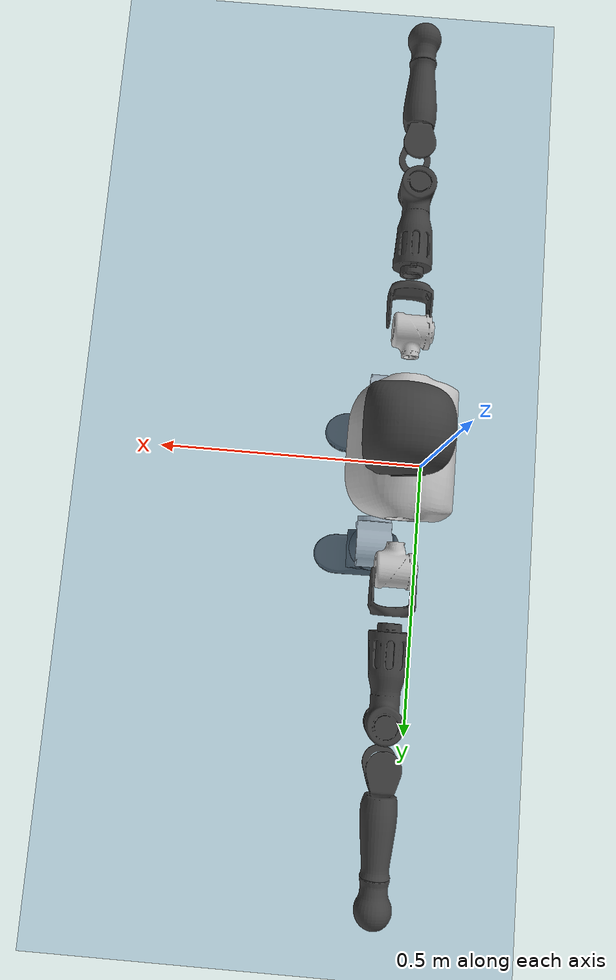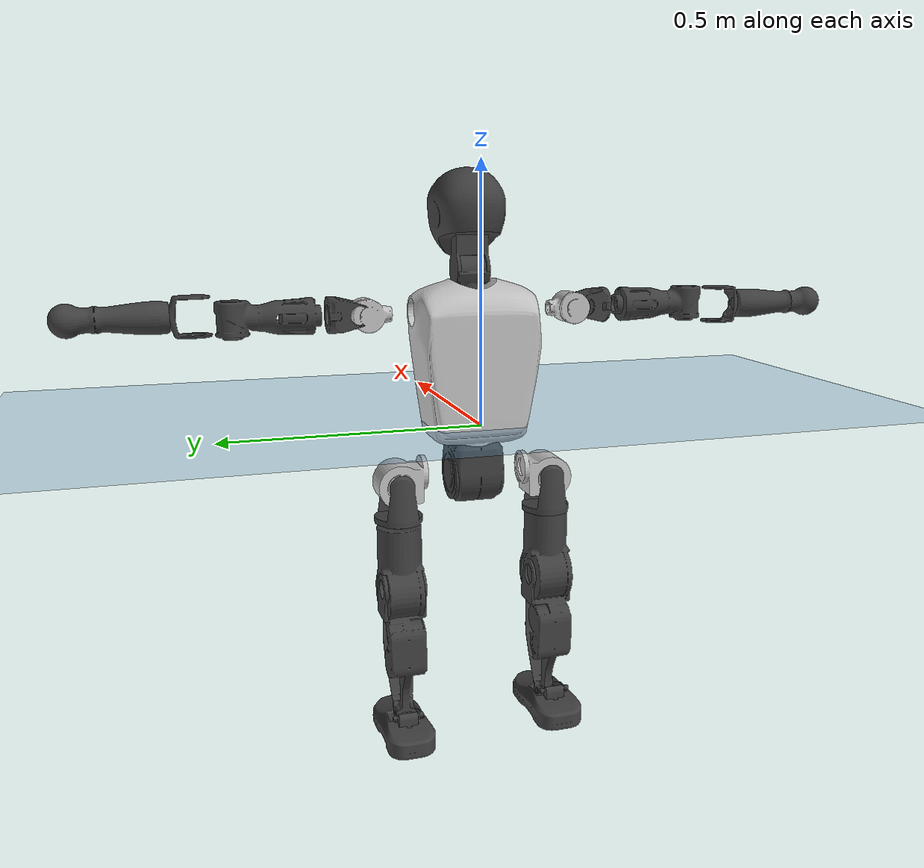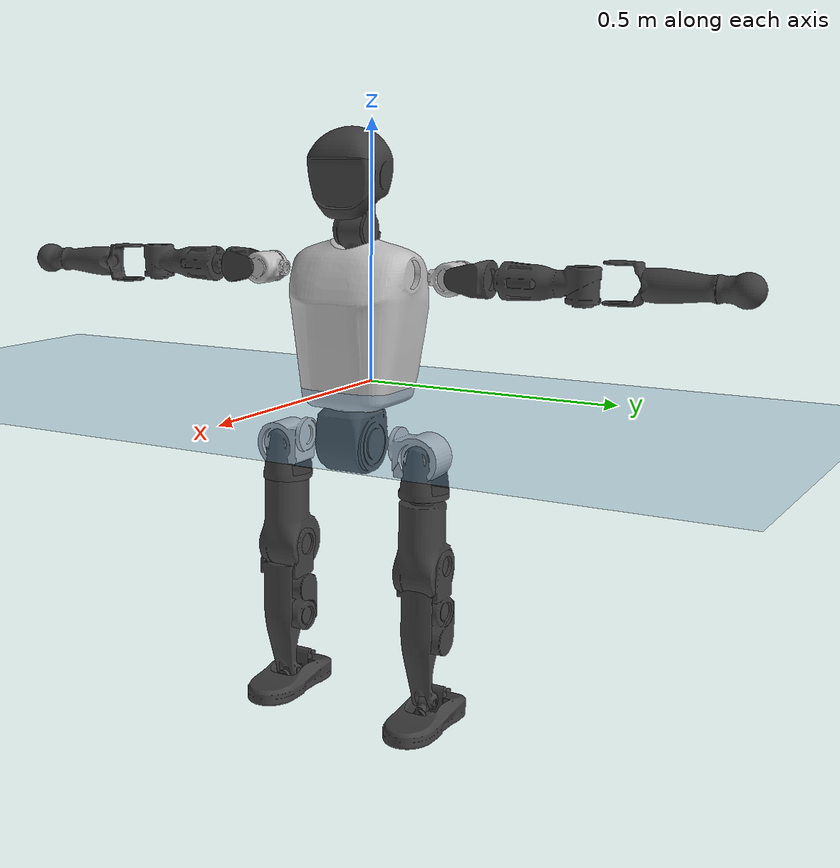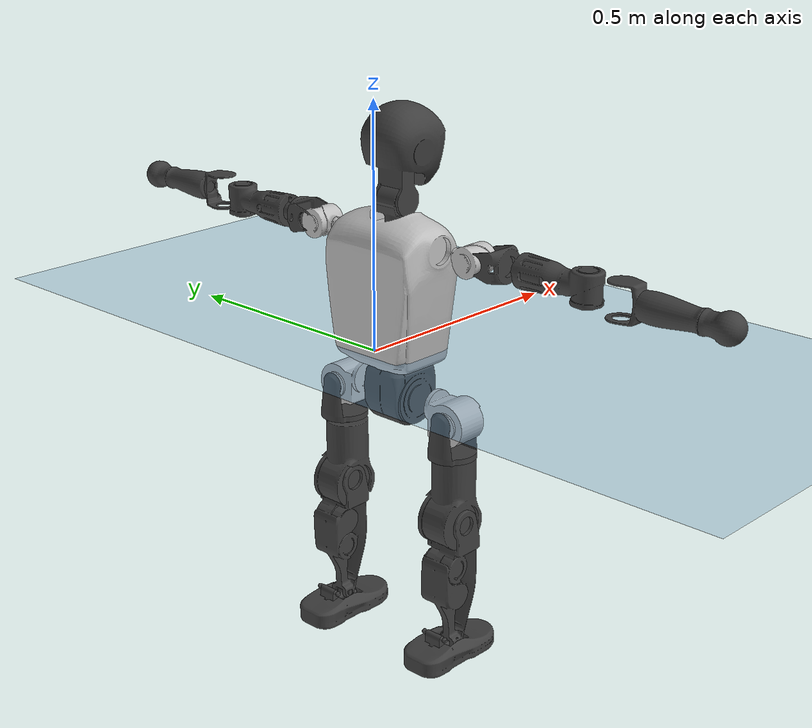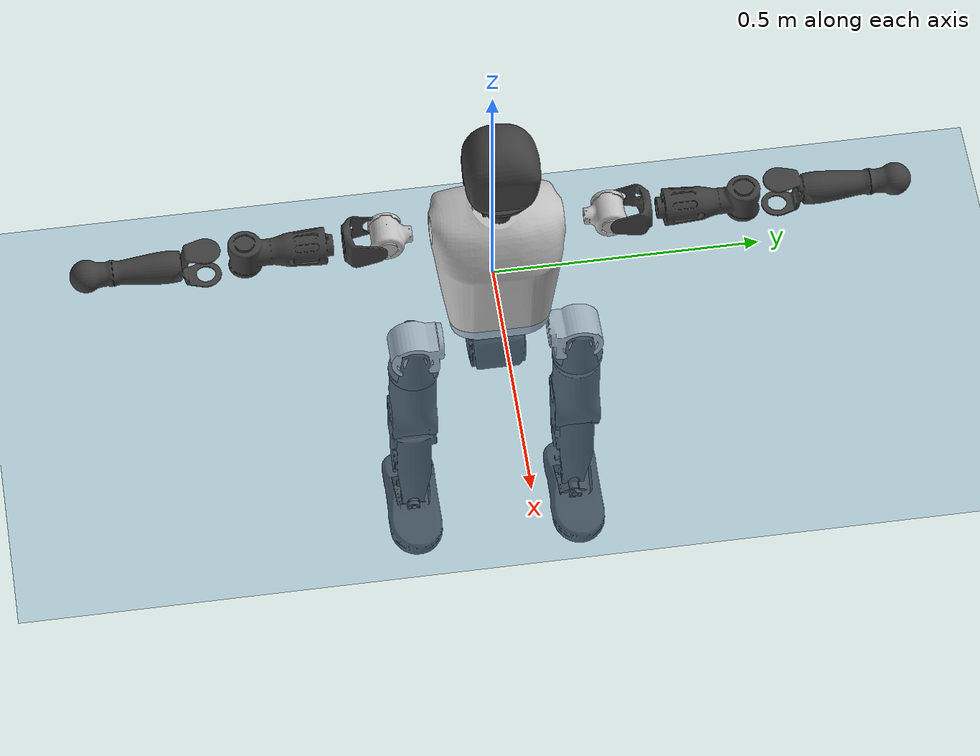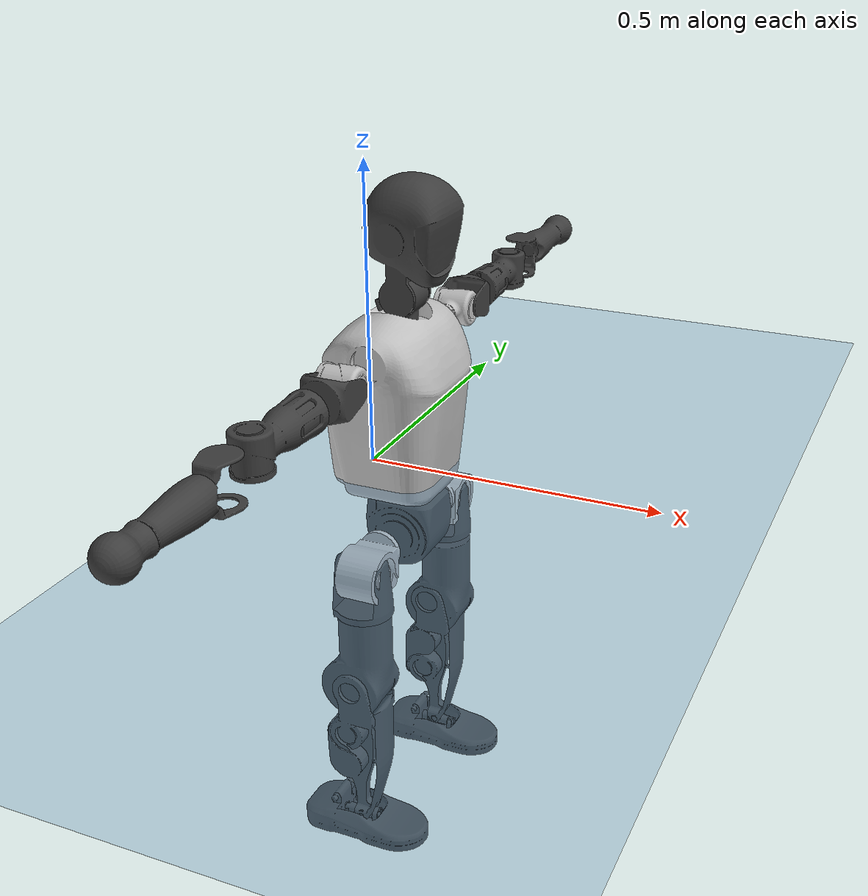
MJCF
<mujoco model="T1">
  <compiler angle="radian" assetdir="assets" balanceinertia="true" inertiafromgeom="false"/>

  <option timestep="0.005" density="1.2" viscosity="2e-05"/>

  <size nkey="1"/>

  <visual>
    <quality shadowsize="8192"/>
    <map shadowclip="0.5"/>
  </visual>

  <default>
    <default class="/">
      <joint armature="0.01" damping="0.01" frictionloss="0.1"/>
      <geom contype="0" conaffinity="0" group="1" solref="-1000 -80"/>
      <site size="0.01 0.005 0.005" group="5"/>
      <general forcelimited="true" biastype="affine" gainprm="25" biasprm="0 -25 -0.6"/>
      <default class="t1">
        <geom rgba="0.25 0.25 0.25 1"/>
        <default class="visual">
          <geom type="mesh" group="2"/>
        </default>
        <default class="collision">
          <geom group="3"/>
        </default>
        <default class="foot">
          <geom size="0.1115 0.05 0.015" type="box" condim="6" group="4" priority="1" solimp="0.015 1 0.015"/>
        </default>
        <default class="reward_collision_sphere">
          <geom group="5" rgba="1 0 0 1"/>
        </default>
      </default>
    </default>
  </default>

  <asset>
    <texture type="skybox" colorspace="auto" name="//unnamed_texture_0" builtin="gradient" rgb1="0.95 0.95 0.95" rgb2="0.95 0.95 0.95" width="100" height="600"/>
    <texture type="2d" colorspace="auto" name="texplane" builtin="checker" rgb1="0.345 0.575 0.748" rgb2="0.345 0.575 0.748" markrgb="1 1 1" width="512" height="512"/>
    <material name="MatPlane" class="/" texture="texplane" texuniform="true" texrepeat="2 2" specular="0.9"/>
    <mesh name="Trunk" class="/" file="Trunk.stl"/>
    <mesh name="H1" class="/" file="H1.stl"/>
    <mesh name="H2" class="/" file="H2.stl"/>
    <mesh name="AL1" class="/" file="AL1.stl"/>
    <mesh name="AL2" class="/" file="AL2.stl"/>
    <mesh name="AL3" class="/" file="AL3.stl"/>
    <mesh name="left_hand_link" class="/" file="left_hand_link.stl"/>
    <mesh name="AR1" class="/" file="AR1.stl"/>
    <mesh name="AR2" class="/" file="AR2.stl"/>
    <mesh name="AR3" class="/" file="AR3.stl"/>
    <mesh name="right_hand_link" class="/" file="right_hand_link.stl"/>
    <mesh name="Waist" class="/" file="Waist.stl"/>
    <mesh name="Hip_Pitch_Left" class="/" file="Hip_Pitch_Left.stl"/>
    <mesh name="Hip_Roll_Left" class="/" file="Hip_Roll_Left.stl"/>
    <mesh name="Hip_Yaw_Left" class="/" file="Hip_Yaw_Left.stl"/>
    <mesh name="Shank_Left" class="/" file="Shank_Left.stl"/>
    <mesh name="Ankle_Cross_Left" class="/" file="Ankle_Cross_Left.stl"/>
    <mesh name="left_foot_link" class="/" file="left_foot_link.stl"/>
    <mesh name="Hip_Pitch_Right" class="/" file="Hip_Pitch_Right.stl"/>
    <mesh name="Hip_Roll_Right" class="/" file="Hip_Roll_Right.stl"/>
    <mesh name="Hip_Yaw_Right" class="/" file="Hip_Yaw_Right.stl"/>
    <mesh name="Shank_Right" class="/" file="Shank_Right.stl"/>
    <mesh name="Ankle_Cross_Right" class="/" file="Ankle_Cross_Right.stl"/>
    <mesh name="right_foot_link" class="/" file="right_foot_link.stl"/>
  </asset>

  <worldbody>
    <geom name="floor" class="/" size="100 100 0.125" type="plane" group="0" material="MatPlane"/>
    <light name="toplight_shadow" class="/" pos="0 0 5" dir="0.0990148 0.0990148 -0.990148" type="directional" ambient="0.04 0.04 0.04" diffuse="0.55 0.55 0.55" specular="0.12 0.12 0.12"/>
    <light name="toplight_fill" class="/" pos="0 0 5" dir="0.0990148 0.0990148 -0.990148" type="directional" castshadow="false" ambient="0.04 0.04 0.04" diffuse="0.3 0.3 0.3" specular="0.08 0.08 0.08"/>
    <body name="trunk" childclass="t1" pos="-0.000243605 -0.000653965 -0.000991803" quat="1 2.13088e-05 0.000472789 0.000181236">
      <inertial pos="0.0545951 -0.00758773 0.0973789" quat="0.999939 0.00370505 -0.00372932 -0.00972883" mass="18.6855" diaginertia="0.108346 0.54465 0.0491421"/>
      <joint name="//unnamed_joint_0" type="free" armature="0" damping="0" frictionloss="0"/>
      <geom name="//unnamed_geom_1" class="visual" rgba="0.76 0.76 0.76 1" mesh="Trunk"/>
      <geom name="//unnamed_geom_2" class="collision" size="0.0871679 0.116224 0.174336" pos="0.0619459 0 0.11743" type="box"/>
      <geom name="//unnamed_geom_3" class="reward_collision_sphere" size="0.133658" pos="0.0619459 0 0.0978582"/>
      <geom name="//unnamed_geom_4" class="reward_collision_sphere" size="0.0174336" pos="0.0619459 0.125435 0"/>
      <geom name="//unnamed_geom_5" class="reward_collision_sphere" size="0.0174336" pos="0.0619459 -0.125435 0"/>
      <geom name="//unnamed_geom_6" class="reward_collision_sphere" size="0.0174336" pos="0.0619459 0.1579 0.176145"/>
      <geom name="//unnamed_geom_7" class="reward_collision_sphere" size="0.0174336" pos="0.0619459 -0.1579 0.176145"/>
      <site name="imu" pos="0.00678734 0.0021608 0.00819742" size="0.0116224"/>
      <camera name="track" pos="0 -2.95141 0" quat="0.707107 0.707107 0 0" mode="trackcom"/>
      <camera name="ego_camera" pos="0.125957 0 0.411004" quat="-0.5 -0.5 0.5 0.5"/>
      <body name="H1" pos="0.0632742 0.00470235 0.232347" quat="1 -0.000248124 -0.000137989 -5.20817e-05">
        <inertial pos="-0.0019254 -0.00975591 0.0540798" quat="0.767992 -0.037961 0.00206467 0.63933" mass="0.711459" diaginertia="0.000296999 0.00159081 0.000131683"/>
        <joint name="AAHead_yaw" pos="0 0 0" axis="-0.00111454 0.000661744 0.999999" range="-1.56311 1.68555" armature="0.0103062" damping="0" frictionloss="0.163366"/>
        <geom name="//unnamed_geom_8" class="visual" mesh="H1"/>
        <body name="H2" pos="0.00115831 -0.00087749 0.0648845" quat="1 -0.000659367 0.00045852 0.000341446">
          <inertial pos="0.0063708 0.00778249 0.0956833" quat="0.986247 0.118626 -0.0569229 -0.100022" mass="1.00047" diaginertia="0.00238549 0.0136241 0.00151118"/>
          <joint name="Head_pitch" pos="0 0 0" axis="-0.00823705 -0.999963 -0.00227374" range="-1.25575 0.364323" armature="0.0119042" damping="0.000944884" frictionloss="0.129164"/>
          <geom name="//unnamed_geom_9" class="visual" mesh="H2"/>
          <geom name="//unnamed_geom_10" class="collision" size="0.0929791" pos="0.0103243 0 0.107644"/>
          <geom name="//unnamed_geom_11" class="reward_collision_sphere" size="0.104602" pos="0.0206486 0 0.0978582"/>
        </body>
      </body>
      <body name="AL1" pos="0.0621701 0.160183 0.215416" quat="0.999996 -0.00114906 -7.04591e-05 0.00250233">
        <inertial pos="-0.00139302 0.0665638 -0.000383074" quat="0.496568 0.490698 -0.5302 0.481169" mass="0.812441" diaginertia="0.00161003 0.00833114 0.000267705"/>
        <joint name="Left_Shoulder_Pitch" pos="0 0 0" axis="0.000853605 0.999999 -0.00127689" range="-3.26309 1.12786" armature="0.0116282" damping="0.00104611" frictionloss="0.118413"/>
        <geom name="//unnamed_geom_12" class="visual" rgba="0.76 0.76 0.76 1" mesh="AL1"/>
        <body name="AL2" pos="0.000809098 0.0649725 0.00252821" quat="0.999999 6.11803e-05 0.00126558 -0.000401769">
          <inertial pos="-0.00193942 0.0486462 -0.00122905" quat="0.49264 0.53212 -0.455571 0.516343" mass="0.256677" diaginertia="0.000488396 0.00247298 0.000150763"/>
          <joint name="Left_Shoulder_Roll" pos="0 0 0" axis="-0.999966 -0.00502889 0.00652351" range="-1.57496 1.74496" armature="0.0130035" damping="0.00858552" frictionloss="0.104662"/>
          <geom name="//unnamed_geom_13" class="visual" mesh="AL2"/>
          <body name="AL3" pos="0.000907991 0.0814478 -0.000741332" quat="1 -0.000437162 0.000208018 -0.000306385">
            <inertial pos="0.00641891 0.127784 0.00152364" quat="0.713125 0.701004 0.00647323 0.00221068" mass="1.45076" diaginertia="0.0140073 0.0869183 0.000536371"/>
            <joint name="Left_Elbow_Pitch" pos="0 0 0" axis="0.00245354 -0.999997 0.000379195" range="-2.23228 2.14643" armature="0.0100171" damping="0" frictionloss="0.110925"/>
            <geom name="//unnamed_geom_14" class="visual" mesh="AL3"/>
            <geom name="//unnamed_geom_15" class="collision" size="0.0348672 0.0871679" pos="0 0.0737852 0" quat="0.707105 0.707108 0 0" type="cylinder"/>
            <geom name="//unnamed_geom_16" class="reward_collision_sphere" size="0.0418406"/>
            <body name="left_hand_link" pos="-0.00021654 0.211075 0.00696844" quat="0.999999 -0.000349689 -0.00107733 -6.44914e-05">
              <inertial pos="0.00133591 0.159316 0.00268767" quat="0.70303 0.711158 0.000995963 -0.00143557" mass="0.530257" diaginertia="0.0101281 0.056276 0.000188268"/>
              <joint name="Left_Elbow_Yaw" pos="0 0 0" axis="0.000812747 -0.00316119 0.999995" range="-2.32052 -0.0277695" armature="0.0116455" damping="0.0461508" frictionloss="0.0935786"/>
              <geom name="//unnamed_geom_17" class="visual" mesh="left_hand_link"/>
              <geom name="//unnamed_geom_18" class="collision" size="0.0348672 0.101696" pos="0 0.191842 0" quat="0.707105 0.707108 0 0" type="cylinder"/>
              <geom name="//unnamed_geom_19" class="reward_collision_sphere" size="0.058112"/>
              <geom name="//unnamed_geom_20" class="reward_collision_sphere" size="0.0406784" pos="0 0.162328 0"/>
              <geom name="//unnamed_geom_21" class="reward_collision_sphere" size="0.0406784" pos="0 0.317277 0"/>
            </body>
          </body>
        </body>
      </body>
      <body name="AR1" pos="0.0595377 -0.156122 0.217756" quat="0.999999 -0.00069453 0.000237274 -0.000777297">
        <inertial pos="0.00097067 -0.066046 0.00626893" quat="0.52211 0.502625 -0.480148 0.494193" mass="0.785787" diaginertia="0.00161245 0.0090358 0.000254746"/>
        <joint name="Right_Shoulder_Pitch" pos="0 0 0" axis="-0.00434769 -0.999985 -0.00330734" range="-1.22059 3.2979" armature="0.0126453" damping="0.0355613" frictionloss="0.155657"/>
        <geom name="//unnamed_geom_22" class="visual" rgba="0.76 0.76 0.76 1" mesh="AR1"/>
        <body name="AR2" pos="0.00645004 -0.0696666 0.00174599" quat="1 4.64561e-05 2.57596e-05 6.51911e-05">
          <inertial pos="0.00534546 -0.0483648 0.00263335" quat="0.492316 0.491439 -0.534327 0.480217" mass="0.260374" diaginertia="0.000465849 0.00251016 0.000155979"/>
          <joint name="Right_Shoulder_Roll" pos="0 0 0" axis="-0.999879 -0.0152666 0.00293846" range="-1.74615 1.55816" armature="0.0117597" damping="0.0451024" frictionloss="0.125634"/>
          <geom name="//unnamed_geom_23" class="visual" mesh="AR2"/>
          <body name="AR3" pos="0.000332077 -0.0884616 -0.000338124" quat="1 0.000641511 0.000459405 0.000439448">
            <inertial pos="0.00125391 -0.127866 -0.00166766" quat="0.704909 0.709227 -0.0068269 0.00740179" mass="1.55976" diaginertia="0.0148722 0.0957343 0.000540538"/>
            <joint name="Right_Elbow_Pitch" pos="0 0 0" axis="0.00284089 0.999993 -0.00261659" range="-2.3162 2.29012" armature="0.0121481" damping="0.00401273" frictionloss="0.128337"/>
            <geom name="//unnamed_geom_24" class="visual" mesh="AR3"/>
            <geom name="//unnamed_geom_25" class="collision" size="0.0348672 0.0871679" pos="0 -0.0737852 0" quat="0.707105 0.707108 0 0" type="cylinder"/>
            <geom name="//unnamed_geom_26" class="reward_collision_sphere" size="0.0418406"/>
            <body name="right_hand_link" pos="0.003755 -0.220039 -0.0073159" quat="0.999999 0.000375654 0.00102805 0.000367671">
              <inertial pos="0.00149987 -0.164408 0.00106671" quat="0.699762 0.714368 0.00318624 0.00107099" mass="0.496979" diaginertia="0.00966219 0.057401 0.000190957"/>
              <joint name="Right_Elbow_Yaw" pos="0 0 0" axis="-0.00168579 0.000407453 0.999998" range="-0.0466304 2.42277" armature="0.0104453" damping="0.0243355" frictionloss="0.0791312"/>
              <geom name="//unnamed_geom_27" class="visual" mesh="right_hand_link"/>
              <geom name="//unnamed_geom_28" class="collision" size="0.0348672 0.101696" pos="0 -0.191842 0" quat="0.707105 0.707108 0 0" type="cylinder"/>
              <geom name="//unnamed_geom_29" class="reward_collision_sphere" size="0.058112"/>
              <geom name="//unnamed_geom_30" class="reward_collision_sphere" size="0.0406784" pos="0 -0.162328 0"/>
              <geom name="//unnamed_geom_31" class="reward_collision_sphere" size="0.0406784" pos="0 -0.317277 0"/>
            </body>
          </body>
        </body>
      </body>
      <body name="Waist" pos="0.0679832 -0.00346372 -0.106098" quat="1 0.000273039 -0.000138479 0.000288932">
        <inertial pos="0.0107757 0.00179985 0.00966897" quat="0.983746 0.0115103 -0.179162 0.00338914" mass="4.30239" diaginertia="0.0070103 0.0369831 0.00437735"/>
        <joint name="Waist" pos="0 0 0" axis="-0.00332848 -0.00428296 0.999985" range="-1.54492 1.57139" armature="0.0101412" damping="0.00680456" frictionloss="0.112853"/>
        <geom name="//unnamed_geom_32" class="visual" mesh="Waist"/>
        <body name="Hip_Pitch_Left" pos="0.00315695 0.15493 0.00516949" quat="0.999999 -0.000725484 -0.000220995 0.00112635">
          <inertial pos="9.95824e-05 -0.0147942 -0.0204865" quat="0.97367 0.22734 0.0167646 0.00111069" mass="1.47724" diaginertia="0.0021034 0.00991722 0.00112272"/>
          <joint name="Left_Hip_Pitch" pos="0 0 0" axis="-0.00320274 0.999988 0.0035875" range="-1.79255 1.44715" armature="0.00763864" damping="0.00649928" frictionloss="0.120649"/>
          <geom name="//unnamed_geom_33" class="visual" rgba="0.76 0.76 0.76 1" mesh="Hip_Pitch_Left"/>
          <body name="Hip_Roll_Left" pos="-0.00598495 0.000416544 -0.0181245" quat="0.999999 0.000815359 -0.0010788 0.000454221">
            <inertial pos="0.00192828 0.000788104 -0.0529569" quat="0.727631 -0.00329104 0.0119165 0.685857" mass="0.661605" diaginertia="0.00217378 0.0105968 0.000462858"/>
            <joint name="Left_Hip_Roll" pos="0 0 0" axis="-0.999713 -0.0223784 0.00855615" range="-1.56362 0.23769" armature="0.00823645" damping="0" frictionloss="0.123946"/>
            <geom name="//unnamed_geom_34" class="visual" mesh="Hip_Roll_Left"/>
            <geom name="//unnamed_geom_35" class="reward_collision_sphere" size="0.0639232"/>
            <body name="Hip_Yaw_Left" pos="0.00273901 -0.00145268 -0.0885408" quat="0.999999 -0.00117332 6.23327e-05 -0.000417395">
              <inertial pos="-0.00256881 0.00121976 -0.0893981" quat="0.694453 -0.0305098 -0.0419315 0.717667" mass="3.29925" diaginertia="0.0290296 0.188906 0.00223845"/>
              <joint name="Left_Hip_Yaw" pos="0 0 0" axis="0.00395065 0.00812067 -0.999959" range="-0.978148 0.89533" armature="0.0119583" damping="0.00433313" frictionloss="0.11798"/>
              <geom name="//unnamed_geom_36" class="visual" mesh="Hip_Yaw_Left"/>
              <geom name="//unnamed_geom_37" class="collision" size="0.058112 0.0929791" type="cylinder"/>
              <body name="Shank_Left" pos="-0.0216418 0.000144345 -0.122325" quat="1 -0.000457263 -0.000212499 -0.000335112">
                <inertial pos="-0.00795207 -0.00439749 -0.127146" quat="0.997546 0.00125451 -0.024792 0.065462" mass="2.93243" diaginertia="0.0396355 0.230412 0.00167208"/>
                <joint name="Left_Knee_Pitch" pos="0 0 0" axis="0.00902019 0.999815 0.0169739" range="-0.0132784 2.34339" armature="0.0120298" damping="0.000304203" frictionloss="0.105404"/>
                <geom name="//unnamed_geom_38" class="visual" mesh="Shank_Left"/>
                <geom name="//unnamed_geom_39" class="collision" size="0.058112 0.0871679" pos="0 0 -0.11743" type="cylinder"/>
                <geom name="//unnamed_geom_40" class="reward_collision_sphere" size="0.0755455"/>
                <body name="Ankle_Cross_Left" pos="0.00322377 0.000358407 -0.280151" quat="0.999999 0.00119851 7.66138e-05 -0.000457388">
                  <inertial pos="-0.00360073 -0.00323902 -0.00896384" quat="0.452754 0.540319 0.546375 0.452265" mass="0.105958" diaginertia="3.1146e-05 0.000179217 9.86445e-06"/>
                  <joint name="Left_Ankle_Pitch" pos="0 0 0" axis="-0.000225245 1 0.000388054" stiffness="0.00586582" range="-0.993141 0.388229" armature="0.0120778" damping="0" frictionloss="0.123474"/>
                  <geom name="//unnamed_geom_41" class="visual" mesh="Ankle_Cross_Left"/>
                  <body name="left_foot_link" pos="-0.000509944 0.00265657 -0.0184228" quat="1 0.000243443 -6.90987e-05 -3.78469e-05">
                    <inertial pos="0.00331208 0.000874004 -0.00452411" quat="-0.00165011 0.62387 -0.00439297 0.781514" mass="1.17103" diaginertia="0.00360069 0.0174277 0.0018796"/>
                    <joint name="Left_Ankle_Roll" pos="0 0 0" axis="-0.999903 -0.000710026 -0.0139427" range="-0.42366 0.442832" armature="0.0111185" damping="0" frictionloss="0.117668"/>
                    <geom name="//unnamed_geom_42" class="visual" mesh="left_foot_link"/>
                    <geom name="left_foot" class="foot" size="0.119288 0.0421613 0.0194908" pos="0.0103243 0 -0.0146787"/>
                    <geom name="//unnamed_geom_44" class="reward_collision_sphere" size="0.0604364" pos="0.0103243 0 -0.0146787"/>
                    <geom name="//unnamed_geom_45" class="reward_collision_sphere" size="0.0348672" pos="0.0980809 -0.0339412 -0.0146787"/>
                    <geom name="//unnamed_geom_46" class="reward_collision_sphere" size="0.0348672" pos="-0.0722702 -0.0339412 -0.0146787"/>
                    <site name="left_foot" class="foot" pos="0.0103243 0 -0.0146787" size="0.0116224"/>
                  </body>
                </body>
              </body>
            </body>
          </body>
        </body>
        <body name="Hip_Pitch_Right" pos="-0.00264221 -0.15499 0.00131304" quat="0.999996 -0.00179602 -0.00152875 -0.00165223">
          <inertial pos="0.00464846 0.00996875 -0.0227746" quat="0.973029 -0.230305 0.0129965 0.00223657" mass="1.54756" diaginertia="0.00204284 0.00969499 0.00119115"/>
          <joint name="Right_Hip_Pitch" pos="0 0 0" axis="0.00423833 -0.999952 0.00881353" stiffness="0.00240577" range="-1.56717 1.94645" armature="0.0131287" damping="0.00451683" frictionloss="0.112694"/>
          <geom name="//unnamed_geom_47" class="visual" rgba="0.76 0.76 0.76 1" mesh="Hip_Pitch_Right"/>
          <body name="Hip_Roll_Right" pos="-0.00665632 0.0015875 -0.0147635" quat="1 -5.43293e-05 -0.000278026 0.000289902">
            <inertial pos="0.000768533 0.000798132 -0.0546649" quat="0.702194 0.0150428 -0.0329156 0.711065" mass="0.614421" diaginertia="0.00203954 0.0102166 0.000476933"/>
            <joint name="Right_Hip_Roll" pos="0 0 0" axis="-0.999884 0.0150454 -0.00244753" range="-0.357891 1.52695" armature="0.0111326" damping="0" frictionloss="0.110617"/>
            <geom name="//unnamed_geom_48" class="visual" mesh="Hip_Roll_Right"/>
            <geom name="//unnamed_geom_49" class="reward_collision_sphere" size="0.0639232"/>
            <body name="Hip_Yaw_Right" pos="0.000723267 -0.00154477 -0.0774298" quat="0.999999 3.23845e-05 0.00071004 0.000971809">
              <inertial pos="-0.00688368 0.000974065 -0.0810221" quat="0.712187 -0.0289165 -0.0313582 0.700692" mass="3.55751" diaginertia="0.031422 0.177125 0.00242053"/>
              <joint name="Right_Hip_Yaw" pos="0 0 0" axis="-0.0286999 0.0294937 -0.999153" range="-0.968796 1.02966" armature="0.00870766" damping="0.0437742" frictionloss="0.118377"/>
              <geom name="//unnamed_geom_50" class="visual" mesh="Hip_Yaw_Right"/>
              <geom name="//unnamed_geom_51" class="collision" size="0.058112 0.0929791" type="cylinder"/>
              <body name="Shank_Right" pos="-0.0114719 -0.00219905 -0.135601" quat="1 -0.000680216 -1.56652e-05 0.000293955">
                <inertial pos="-0.00550569 -0.000992603 -0.116164" quat="0.999273 0.00579003 -0.0292951 -0.0236979" mass="2.5131" diaginertia="0.0365301 0.224394 0.0015615"/>
                <joint name="Right_Knee_Pitch" pos="0 0 0" axis="0.0107657 -0.999792 -0.0173348" range="-2.46052 0.00363322" armature="0.00762119" damping="0.00117081" frictionloss="0.119498"/>
                <geom name="//unnamed_geom_52" class="visual" mesh="Shank_Right"/>
                <geom name="//unnamed_geom_53" class="collision" size="0.058112 0.0871679" pos="0 0 -0.11743" type="cylinder"/>
                <geom name="//unnamed_geom_54" class="reward_collision_sphere" size="0.0755455"/>
                <body name="Ankle_Cross_Right" pos="0.00151509 0.00129974 -0.271044" quat="1 0.000399922 0.000175997 0.000243329">
                  <inertial pos="-0.00419874 0.00219374 -0.00765866" quat="0.442965 0.551546 0.552778 0.440472" mass="0.114078" diaginertia="3.25428e-05 0.000171398 1.00559e-05"/>
                  <joint name="Right_Ankle_Pitch" pos="0 0 0" axis="-0.000262973 -0.999989 0.00458301" stiffness="0.0244179" range="-0.252319 0.972221" armature="0.0116664" damping="0.0173667" frictionloss="0.104936"/>
                  <geom name="//unnamed_geom_55" class="visual" mesh="Ankle_Cross_Right"/>
                  <body name="right_foot_link" pos="-0.00599529 -0.00149106 -0.00898383" quat="1 -1.5573e-05 -7.90447e-06 -2.54774e-06">
                    <inertial pos="0.00704882 -0.00159187 -0.0096922" quat="0.000795128 0.622343 -0.000386734 0.782744" mass="1.08429" diaginertia="0.00324154 0.0177443 0.00204784"/>
                    <joint name="Right_Ankle_Roll" pos="0 0 0" axis="-0.999922 0.00115133 -0.0124128" range="-0.307799 0.445685" armature="0.012948" damping="0.0349535" frictionloss="0.129215"/>
                    <geom name="//unnamed_geom_56" class="visual" mesh="right_foot_link"/>
                    <geom name="right_foot" class="foot" size="0.08928 0.0548638 0.0169164" pos="0.0103243 0 -0.0146787"/>
                    <geom name="//unnamed_geom_58" class="reward_collision_sphere" size="0.0464896"/>
                    <geom name="//unnamed_geom_59" class="reward_collision_sphere" size="0.0348672" pos="0.0103243 0 -0.0146787"/>
                    <geom name="//unnamed_geom_60" class="reward_collision_sphere" size="0.0348672" pos="0.0980809 0.0339412 -0.0146787"/>
                    <geom name="//unnamed_geom_61" class="reward_collision_sphere" size="0.0348672" pos="-0.0722702 0.0339412 -0.0146787"/>
                    <site name="right_foot" class="foot" pos="0.0103243 0 -0.0146787" size="0.0116224"/>
                  </body>
                </body>
              </body>
            </body>
          </body>
        </body>
      </body>
    </body>
  </worldbody>

  <contact>
    <pair class="/" geom1="floor" geom2="left_foot" name="//unnamed_contact_0"/>
    <pair class="/" geom1="floor" geom2="right_foot" name="//unnamed_contact_1"/>
  </contact>

  <actuator>
    <general name="AAHead_yaw" class="/" joint="AAHead_yaw" forcerange="-8.61107 8.61107" gainprm="31.415" biasprm="0 -31.415 -0.645929"/>
    <general name="Head_pitch" class="/" joint="Head_pitch" forcerange="-8.11097 8.11097" gainprm="31.415" biasprm="0 -31.415 -0.645929"/>
    <general name="Left_Shoulder_Pitch" class="/" joint="Left_Shoulder_Pitch" forcerange="-21.9774 21.9774" gainprm="31.415" biasprm="0 -31.415 -0.645929"/>
    <general name="Left_Shoulder_Roll" class="/" joint="Left_Shoulder_Roll" forcerange="-19.8774 19.8774" gainprm="31.415" biasprm="0 -31.415 -0.645929"/>
    <general name="Left_Elbow_Pitch" class="/" joint="Left_Elbow_Pitch" forcerange="-20.3315 20.3315" gainprm="31.415" biasprm="0 -31.415 -0.645929"/>
    <general name="Left_Elbow_Yaw" class="/" joint="Left_Elbow_Yaw" forcerange="-20.1644 20.1644" gainprm="31.415" biasprm="0 -31.415 -0.645929"/>
    <general name="Right_Shoulder_Pitch" class="/" joint="Right_Shoulder_Pitch" forcerange="-22.0288 22.0288" gainprm="31.415" biasprm="0 -31.415 -0.645929"/>
    <general name="Right_Shoulder_Roll" class="/" joint="Right_Shoulder_Roll" forcerange="-21.7923 21.7923" gainprm="31.415" biasprm="0 -31.415 -0.645929"/>
    <general name="Right_Elbow_Pitch" class="/" joint="Right_Elbow_Pitch" forcerange="-16.0888 16.0888" gainprm="31.415" biasprm="0 -31.415 -0.645929"/>
    <general name="Right_Elbow_Yaw" class="/" joint="Right_Elbow_Yaw" forcerange="-21.5752 21.5752" gainprm="31.415" biasprm="0 -31.415 -0.645929"/>
    <general name="Waist" class="/" joint="Waist" forcerange="-36.0323 36.0323" gainprm="31.415" biasprm="0 -31.415 -0.645929"/>
    <general name="Left_Hip_Pitch" class="/" joint="Left_Hip_Pitch" forcerange="-54.5505 54.5505" gainprm="31.415" biasprm="0 -31.415 -0.645929"/>
    <general name="Left_Hip_Roll" class="/" joint="Left_Hip_Roll" forcerange="-30.1282 30.1282" gainprm="31.415" biasprm="0 -31.415 -0.645929"/>
    <general name="Left_Hip_Yaw" class="/" joint="Left_Hip_Yaw" forcerange="-40.4943 40.4943" gainprm="31.415" biasprm="0 -31.415 -0.645929"/>
    <general name="Left_Knee_Pitch" class="/" joint="Left_Knee_Pitch" forcerange="-75.1166 75.1166" gainprm="31.415" biasprm="0 -31.415 -0.645929"/>
    <general name="Left_Ankle_Pitch" class="/" joint="Left_Ankle_Pitch" forcerange="-23.1011 23.1011" gainprm="31.415" biasprm="0 -31.415 -0.645929"/>
    <general name="Left_Ankle_Roll" class="/" joint="Left_Ankle_Roll" forcerange="-14.0746 14.0746" gainprm="31.415" biasprm="0 -31.415 -0.645929"/>
    <general name="Right_Hip_Pitch" class="/" joint="Right_Hip_Pitch" forcerange="-51.9899 51.9899" gainprm="31.415" biasprm="0 -31.415 -0.645929"/>
    <general name="Right_Hip_Roll" class="/" joint="Right_Hip_Roll" forcerange="-35.5147 35.5147" gainprm="31.415" biasprm="0 -31.415 -0.645929"/>
    <general name="Right_Hip_Yaw" class="/" joint="Right_Hip_Yaw" forcerange="-26.1593 26.1593" gainprm="31.415" biasprm="0 -31.415 -0.645929"/>
    <general name="Right_Knee_Pitch" class="/" joint="Right_Knee_Pitch" forcerange="-69.3282 69.3282" gainprm="31.415" biasprm="0 -31.415 -0.645929"/>
    <general name="Right_Ankle_Pitch" class="/" joint="Right_Ankle_Pitch" forcerange="-21.4426 21.4426" gainprm="31.415" biasprm="0 -31.415 -0.645929"/>
    <general name="Right_Ankle_Roll" class="/" joint="Right_Ankle_Roll" forcerange="-18.4922 18.4922" gainprm="31.415" biasprm="0 -31.415 -0.645929"/>
  </actuator>

  <sensor>
    <gyro site="imu" name="imu_angular_velocity"/>
    <velocimeter site="imu" name="imu_linear_velocity"/>
    <framelinvel objtype="site" objname="left_foot" name="left_foot_global_linear_velocity"/>
    <framelinvel objtype="site" objname="right_foot" name="right_foot_global_linear_velocity"/>
  </sensor>

  <keyframe>
    <key name="home" qpos="0 0 0.6385 1 0 0 0 0 0 0 1.4 0 -0.4 0 -1.4 0 0.4 0 -0.4 0 0 0.8 -0.4 0 0.4 0 0 -0.8 0.4 0"/>
  </keyframe>
</mujoco>
